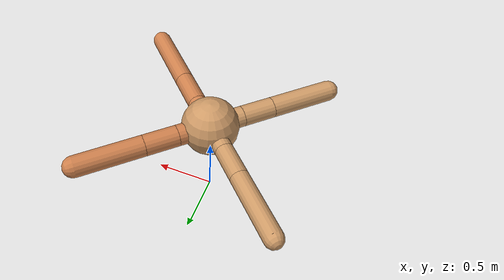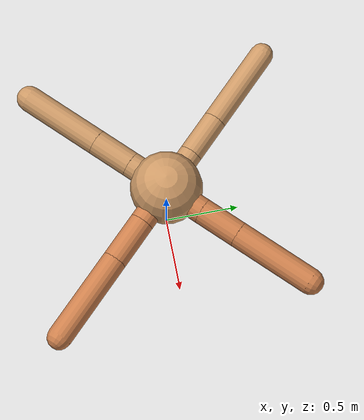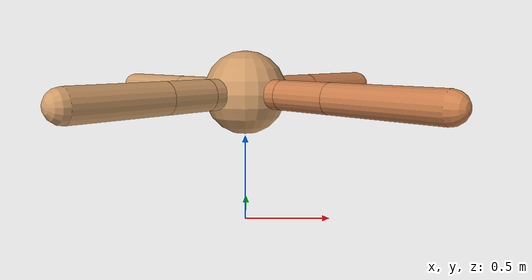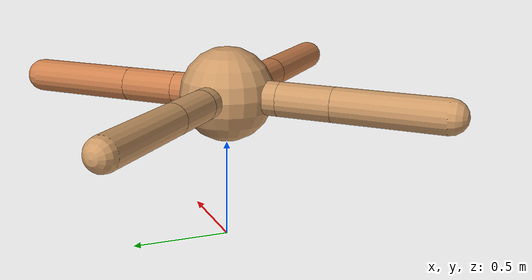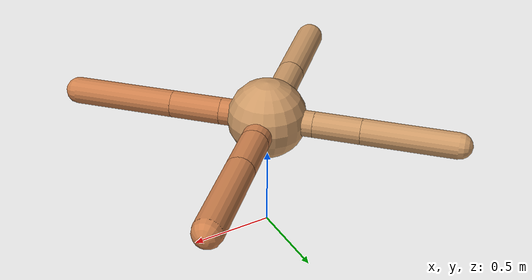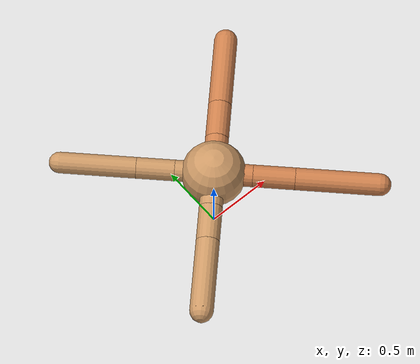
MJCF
<?xml version="1.0" ?>
<mujoco model="ant">

	<compiler angle="degree" coordinate="local" inertiafromgeom="true"/>

	<option integrator="RK4" timestep="0.01"/>

	<custom>

		<numeric data="0.0 0.0 0.55 1.0 0.0 0.0 0.0 0.0 1.0 0.0 -1.0 0.0 -1.0 0.0 1.0" name="init_qpos"/>

	</custom>

	<default>

		<joint armature="1" damping="1" limited="true"/>

		<geom conaffinity="0" condim="3" density="5.0" friction="1.5 0.1 0.1" margin="0.01" rgba="0.8 0.6 0.4 1"/>

	</default>

	<worldbody>

		<body name="torso" pos="0 0 0.75">

			<geom name="torso_geom" pos="0 0 0" size="0.2380961783387351" type="sphere"/>

			<!--joint armature="0" damping="0" limited="false" margin="0.01" name="root" pos="0 0 0" type="free"/-->

			<body name="front_left_leg" pos="0 0 0">

				<geom fromto="0 0 0 0.2 0.2 0" name="aux_1_geom" size="0.08645926128940466" type="capsule" rgba=".8 .5 .3 1"/>

				<body name="aux_1" pos="0.2 0.2 0">

					<joint axis="0 0 1" name="hip_1" pos="0.0 0.0 0.0" range="-40 40" type="hinge"/>

					<geom fromto="0 0 0 0.19672624340606282 0.19672624340606282 0" name="left_leg_geom" size="0.08645926128940466" type="capsule" rgba=".8 .5 .3 1"/>

					<body pos="0.19672624340606282 0.19672624340606282 0" name="front_left_foot">

						<joint axis="-1 1 0" name="ankle_1" pos="0.0 0.0 0.0" range="30 100" type="hinge"/>

						<geom fromto="0 0 0 0.39345248681212563 0.39345248681212563 0" name="left_ankle_geom" size="0.08645926128940466" type="capsule" rgba=".8 .5 .3 1"/>

					</body>

				</body>

			</body>

			<body name="front_right_leg" pos="0 0 0">

				<geom fromto="0 0 0 -0.2 0.2 0" name="aux_2_geom" size="0.07733294661989276" type="capsule"/>

				<body name="aux_2" pos="-0.2 0.2 0">

					<joint axis="0 0 1" name="hip_2" pos="0.0 0.0 0.0" range="-40 40" type="hinge"/>

					<geom fromto="0 0 0 -0.19815644312343714 0.19815644312343714 0" name="right_leg_geom" size="0.07733294661989276" type="capsule"/>

					<body pos="-0.19815644312343714 0.19815644312343714 0" name="front_right_foot">

						<joint axis="1 1 0" name="ankle_2" pos="0.0 0.0 0.0" range="-100 -30" type="hinge"/>

						<geom fromto="0 0 0 -0.3963128862468743 0.3963128862468743 0" name="right_ankle_geom" size="0.07733294661989276" type="capsule"/>

					</body>

				</body>

			</body>

			<body name="left_back_leg" pos="0 0 0">

				<geom fromto="0 0 0 -0.2 -0.2 0" name="aux_3_geom" size="0.08575425597388829" type="capsule"/>

				<body name="aux_3" pos="-0.2 -0.2 0">

					<joint axis="0 0 1" name="hip_3" pos="0.0 0.0 0.0" range="-40 40" type="hinge"/>

					<geom fromto="0 0 0 -0.19102490775771475 -0.19102490775771475 0" name="back_leg_geom" size="0.08575425597388829" type="capsule"/>

					<body pos="-0.19102490775771475 -0.19102490775771475 0" name="left_back_foot">

						<joint axis="-1 1 0" name="ankle_3" pos="0.0 0.0 0.0" range="-100 -30" type="hinge"/>

						<geom fromto="0 0 0 -0.3820498155154295 -0.3820498155154295 0" name="third_ankle_geom" size="0.08575425597388829" type="capsule"/>

					</body>

				</body>

			</body>

			<body name="right_back_leg" pos="0 0 0">

				<geom fromto="0 0 0 0.2 -0.2 0" name="aux_4_geom" size="0.08099186617397033" type="capsule" rgba=".8 .5 .3 1"/>

				<body name="aux_4" pos="0.2 -0.2 0">

					<joint axis="0 0 1" name="hip_4" pos="0.0 0.0 0.0" range="-40 40" type="hinge"/>

					<geom fromto="0 0 0 0.21713141952002807 -0.21713141952002807 0" name="rightback_leg_geom" size="0.08099186617397033" type="capsule" rgba=".8 .5 .3 1"/>

					<body pos="0.21713141952002807 -0.21713141952002807 0" name="right_back_foot">

						<joint axis="1 1 0" name="ankle_4" pos="0.0 0.0 0.0" range="30 100" type="hinge"/>

						<geom fromto="0 0 0 0.43426283904005614 -0.43426283904005614 0" name="fourth_ankle_geom" size="0.08099186617397033" type="capsule" rgba=".8 .5 .3 1"/>

					</body>

				</body>

			</body>

		</body>

	</worldbody>

	<actuator>

		<motor ctrllimited="true" ctrlrange="-1.0 1.0" joint="hip_4" gear="150"/>

		<motor ctrllimited="true" ctrlrange="-1.0 1.0" joint="ankle_4" gear="150"/>

		<motor ctrllimited="true" ctrlrange="-1.0 1.0" joint="hip_1" gear="150"/>

		<motor ctrllimited="true" ctrlrange="-1.0 1.0" joint="ankle_1" gear="150"/>

		<motor ctrllimited="true" ctrlrange="-1.0 1.0" joint="hip_2" gear="150"/>

		<motor ctrllimited="true" ctrlrange="-1.0 1.0" joint="ankle_2" gear="150"/>

		<motor ctrllimited="true" ctrlrange="-1.0 1.0" joint="hip_3" gear="150"/>

		<motor ctrllimited="true" ctrlrange="-1.0 1.0" joint="ankle_3" gear="150"/>

	</actuator>

</mujoco>
